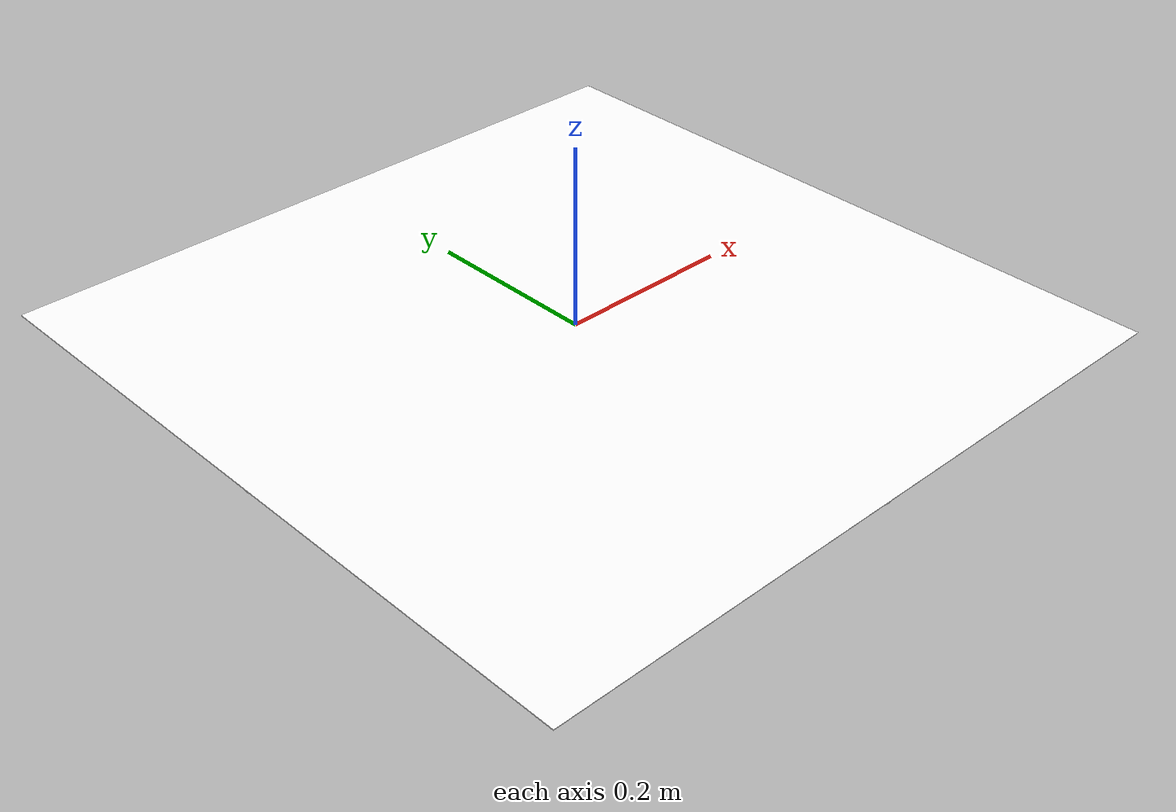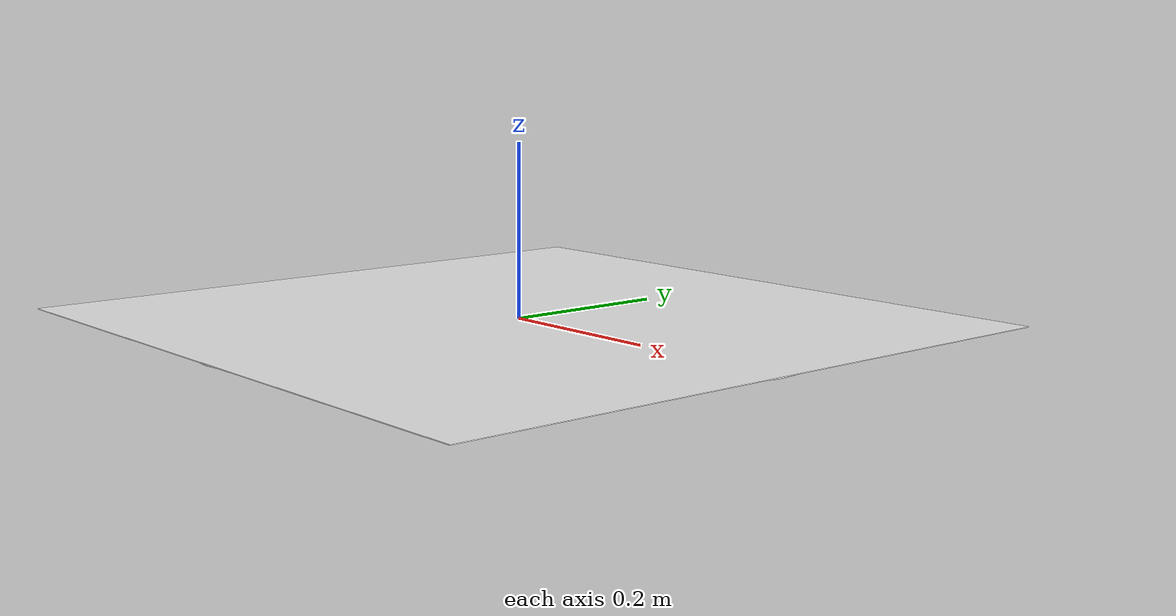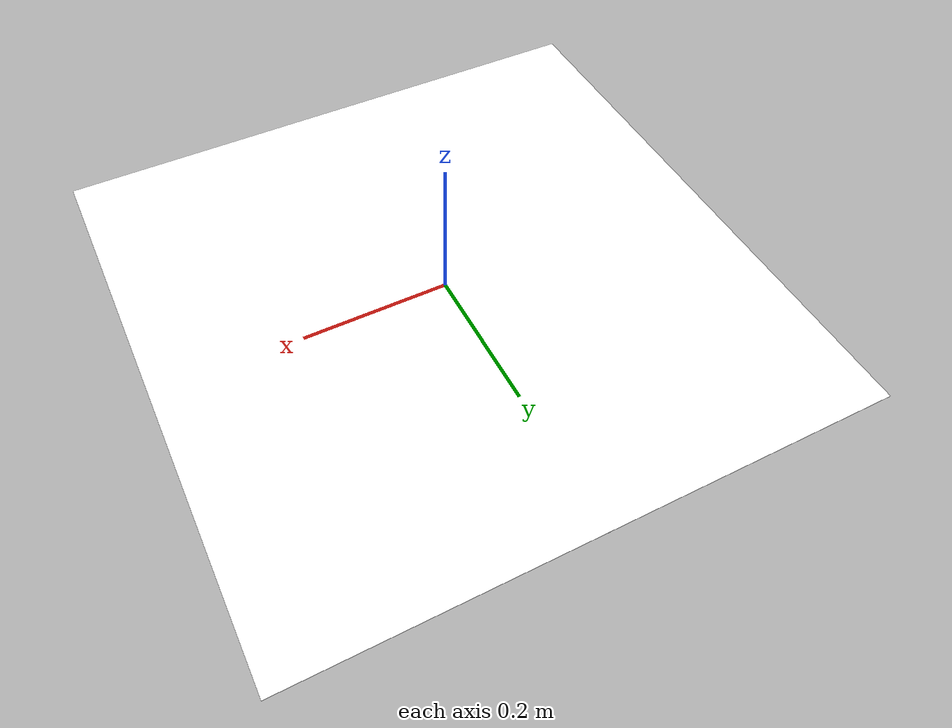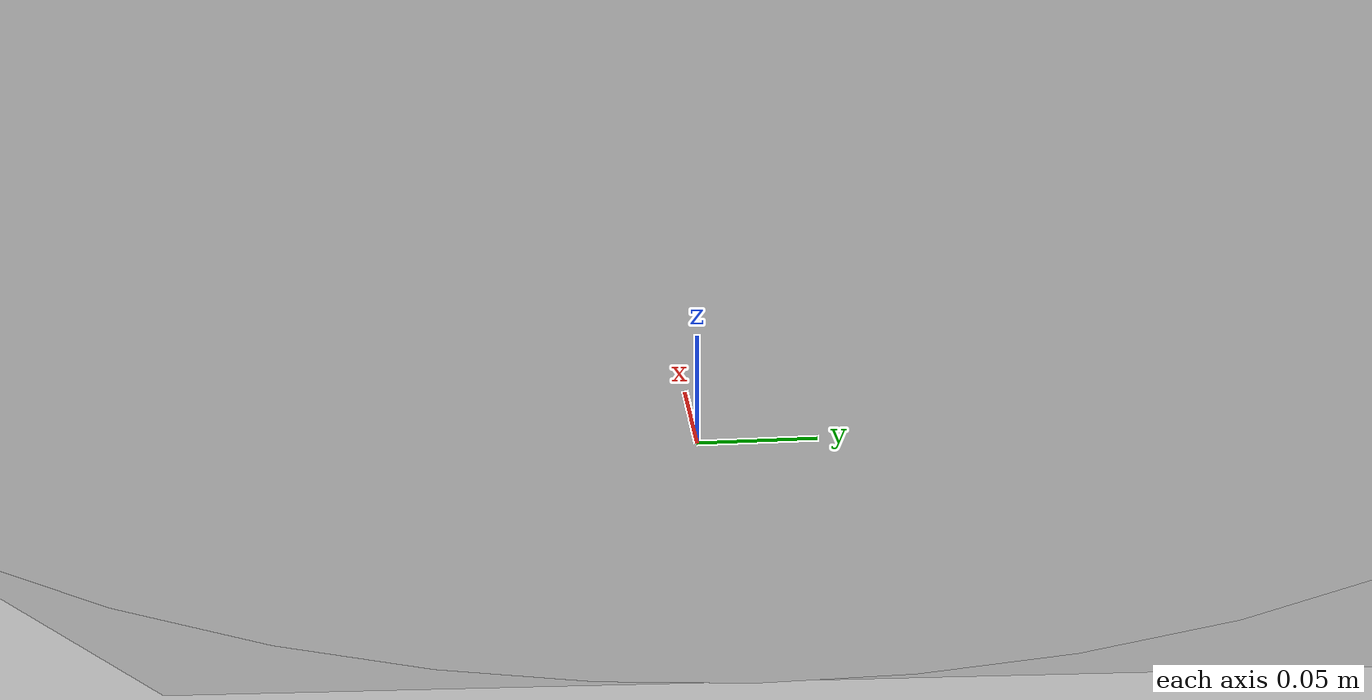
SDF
<?xml version='1.0' encoding='utf-8'?>
<sdf version='1.10'>
<model name='takeoff_platform'>
  <include merge='true'><uri>models/eletroquad_26/miscs/default_platform</uri></include>
  <link name='takeoff_link'>
    <enable_wind>false</enable_wind>
    <visual name='takeoff_image'>
      <pose>0 0 0.001 0 0 0</pose>
      <geometry><plane>
        <normal>0 0 1</normal>
        <size>0.8 0.8</size>
      </plane></geometry>
        <material>
        <diffuse>1 1 1 1</diffuse>
        <specular>1 1 1 1</specular>
        <pbr>
          <metal>
            <albedo_map>materials/textures/takeoff.png</albedo_map>
            <metalness>0</metalness>
            <roughness>1</roughness>
          </metal>
        </pbr>
        </material>
    </visual>
  </link>
  <self_collide>false</self_collide>
  <static>true</static>
</model>
</sdf>

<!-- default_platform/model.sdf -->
<sdf version='1.10'>
<model name='default_platform'>
  <link name='default_link'>
    <enable_wind>false</enable_wind>
    <collision name='default_collision'>
      <geometry><cylinder>
        <radius>0.4</radius>
        <length>0.001</length>
      </cylinder></geometry>
      <surface>
        <friction><ode/></friction>
        <bounce/>
        <contact/>
      </surface>
    </collision>
    <visual name='default_visual'>
      <geometry><cylinder>
        <radius>0.4</radius>
        <length>0.001</length>
      </cylinder></geometry>
      <material>
        <ambient>1 1 1 1</ambient>
        <diffuse>1 1 1 1</diffuse>
        <specular>1 1 1 1</specular>
      </material>
    </visual>
  </link>
  <self_collide>false</self_collide>
  <static>true</static>
</model>
</sdf>
